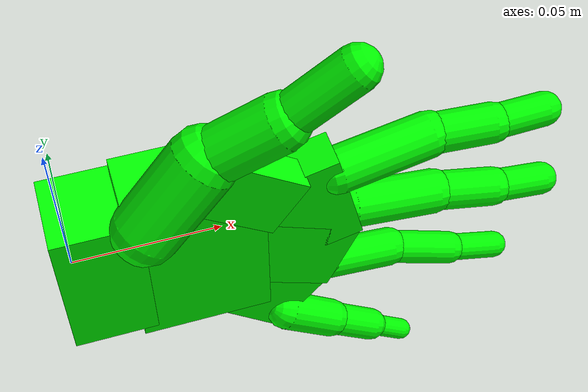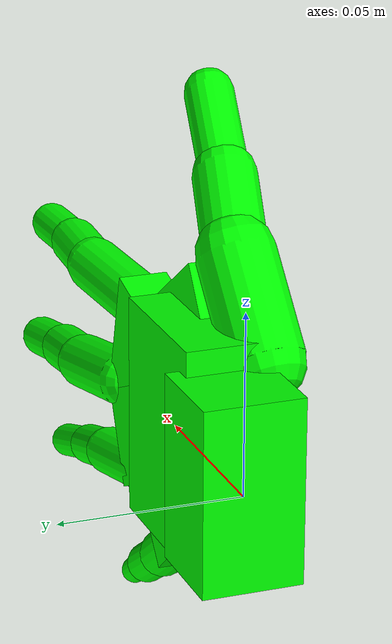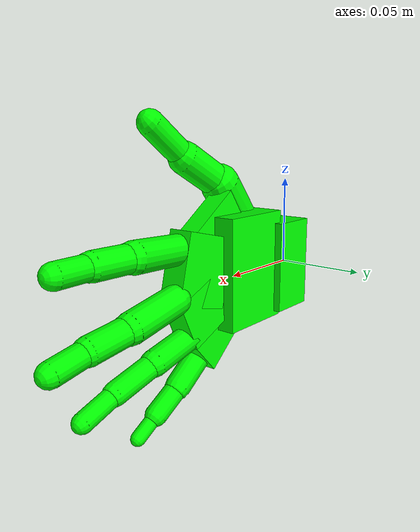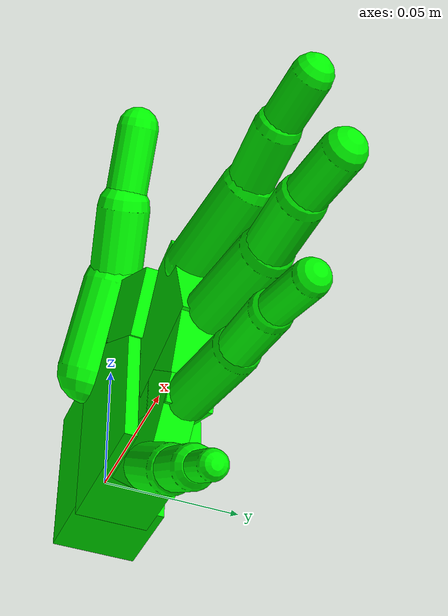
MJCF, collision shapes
<mujoco model="mano">
  <compiler angle="radian" meshdir="meshes/" />

  <default>
    <!-- disable all contacts and use explicit collision pairs -->
    <geom density="800" condim="1" contype="0" conaffinity="0" />
    <!-- with this setting, the response time is around 1s -->
    <position kp="300" dampratio="1.0" inheritrange="1" />
    <joint damping="0.0" armature="1.0" frictionloss="0.0" />
    <site size="0.005" type="sphere" rgba="1 0 0 1" group="3" />
  </default>

  <asset>
    <texture type="skybox" builtin="gradient" rgb1="0.3 0.5 0.7" rgb2="0 0 0" width="512"
      height="3072" />
    <texture type="2d" name="left_groundplane" builtin="checker" mark="edge" rgb1="0.2 0.3 0.4"
      rgb2="0.1 0.2 0.3"
      markrgb="0.8 0.8 0.8" width="300" height="300" />
    <material name="left_groundplane" texture="left_groundplane" texuniform="true"
      texrepeat="5 5"
      reflectance="0.2" />
    <mesh name="left_palm_vis" content_type="model/obj" file="left_meshes/palm_vis.obj" />
    <mesh name="left_palm_collision" content_type="model/obj" file="left_meshes/palm_collision.obj" />
    <mesh name="left_index1_vis" content_type="model/obj" file="left_meshes/index1_vis.obj" />
    <mesh name="left_index1_collision" content_type="model/obj"
      file="left_meshes/index1_collision.obj" />
    <mesh name="left_index2_vis" content_type="model/obj" file="left_meshes/index2_vis.obj" />
    <mesh name="left_index2_collision" content_type="model/obj"
      file="left_meshes/index2_collision.obj" />
    <mesh name="left_index3_vis" content_type="model/obj" file="left_meshes/index3_vis.obj" />
    <mesh name="left_index3_collision" content_type="model/obj"
      file="left_meshes/index3_collision.obj" />
    <mesh name="left_middle1_vis" content_type="model/obj" file="left_meshes/middle1_vis.obj" />
    <mesh name="left_middle1_collision" content_type="model/obj"
      file="left_meshes/middle1_collision.obj" />
    <mesh name="left_middle2_vis" content_type="model/obj" file="left_meshes/middle2_vis.obj" />
    <mesh name="left_middle2_collision" content_type="model/obj"
      file="left_meshes/middle2_collision.obj" />
    <mesh name="left_middle3_vis" content_type="model/obj" file="left_meshes/middle3_vis.obj" />
    <mesh name="left_middle3_collision" content_type="model/obj"
      file="left_meshes/middle3_collision.obj" />
    <mesh name="left_pinky1_vis" content_type="model/obj" file="left_meshes/pinky1_vis.obj" />
    <mesh name="left_pinky1_collision" content_type="model/obj"
      file="left_meshes/pinky1_collision.obj" />
    <mesh name="left_pinky2_vis" content_type="model/obj" file="left_meshes/pinky2_vis.obj" />
    <mesh name="left_pinky2_collision" content_type="model/obj"
      file="left_meshes/pinky2_collision.obj" />
    <mesh name="left_pinky3_vis" content_type="model/obj" file="left_meshes/pinky3_vis.obj" />
    <mesh name="left_pinky3_collision" content_type="model/obj"
      file="left_meshes/pinky3_collision.obj" />
    <mesh name="left_ring1_vis" content_type="model/obj" file="left_meshes/ring1_vis.obj" />
    <mesh name="left_ring1_collision" content_type="model/obj"
      file="left_meshes/ring1_collision.obj" />
    <mesh name="left_ring2_vis" content_type="model/obj" file="left_meshes/ring2_vis.obj" />
    <mesh name="left_ring2_collision" content_type="model/obj"
      file="left_meshes/ring2_collision.obj" />
    <mesh name="left_ring3_vis" content_type="model/obj" file="left_meshes/ring3_vis.obj" />
    <mesh name="left_ring3_collision" content_type="model/obj"
      file="left_meshes/ring3_collision.obj" />
    <mesh name="left_thumb1_vis" content_type="model/obj" file="left_meshes/thumb1_vis.obj" />
    <mesh name="left_thumb1_collision" content_type="model/obj"
      file="left_meshes/thumb1_collision.obj" />
    <mesh name="left_thumb2_vis" content_type="model/obj" file="left_meshes/thumb2_vis.obj" />
    <mesh name="left_thumb2_collision" content_type="model/obj"
      file="left_meshes/thumb2_collision.obj" />
    <mesh name="left_thumb3_vis" content_type="model/obj" file="left_meshes/thumb3_vis.obj" />
    <mesh name="left_thumb3_collision" content_type="model/obj"
      file="left_meshes/thumb3_collision.obj" />
  </asset>

  <worldbody>
    <body name="left_palm" gravcomp="1">
      <joint name="left_pos_x" type="slide" axis="1 0 0" range="-3.0 3.0" />
      <joint name="left_pos_y" type="slide" axis="0 1 0" range="-3.0 3.0" />
      <joint name="left_pos_z" type="slide" axis="0 0 1" range="-3.0 3.0" />
      <joint name="left_rot_x" axis="1 0 0" range="-6.28 6.28" />
      <joint name="left_rot_y" axis="0 1 0" range="-6.28 6.28" />
      <joint name="left_rot_z" axis="0 0 1" range="-6.28 6.28" />

      <geom type="mesh" contype="0" conaffinity="0" group="1" density="0" mesh="left_palm_vis" />
      <geom name="collision_hand_left_index_middle_web" type="box" size="0.017 0.007 0.019" pos="0.075 -0.004 0.008" quat="0.121869 0 0.992546 0" group="3" rgba="0 1 0 1" />
      <geom name="collision_hand_left_palm" type="box" size="0.022 0.012 0.031" pos="0.04 -0.003 0.003" quat="6.12323e-17 0 1 0" group="3" rgba="0 1 0 1" />
      <geom name="collision_hand_left_wrist" type="box" size="0.014 0.014 0.026" pos="0.009 -0.001 0.001" quat="6.12323e-17 0 1 0" group="3" rgba="0 1 0 1" />
      <!-- thumb-index web: mirrored, rotated ~80° about Y -->
      <geom name="collision_hand_left_thumb_index_web" type="box" size="0.011 0.006 0.017" pos="0.056 -0.009 0.028" quat="0.461749 0 0.887011 0" group="3" rgba="0 1 0 1" />
      <!-- ring-pinky web: inner gap, mirrored, rotated ~72.5° about Y -->
      <geom name="collision_hand_left_middle_ring_web" type="box" size="0.014 0.007 0.017" pos="0.074 -0.004 -0.012" quat="0.544639 0 0.838671 0" group="3" rgba="0 1 0 1" />
      <!-- ring-pinky web: outer gap, mirrored, rotated ~-137° about Y -->
      <geom name="collision_hand_left_ring_pinky_web" type="box" size="0.017 0.005 0.017" pos="0.064 -0.006 -0.026" quat="-0.350207 0 0.936672 0" group="3" rgba="0 1 0 1" />
      <site name="left_palm" pos="0.0946604 -0.00147896 -0.00335754" quat="1 -1 1 -1" />

      <body name="left_index1y" pos="0.0880972 -0.00520036 0.020686"
        quat="0.992949 0.00330198 -0.115013 -0.0285073">
        <camera name="left_track" pos="0.868 -0.348 -0.175"
          xyaxes="0.037 0.999 -0.000 0.011 -0.000 1.000" />
        <inertial pos="0 0 0" mass="0.02" diaginertia="1.6875e-06 1.6875e-06 1.6875e-06" />
        <joint name="left_j_index1y" pos="0 0 0" axis="0 -1 0" range="-0.174533 0.174533" />
        <body name="left_index1z">
          <inertial pos="0 0 0" mass="0.02" diaginertia="1.6875e-06 1.6875e-06 1.6875e-06" />
          <joint name="left_j_index1z" pos="0 0 0" axis="0 0 -1" range="0 1.5708" />
          <geom quat="0.992949 -0.00330198 0.115013 0.0285073" type="mesh" contype="0"
            conaffinity="0"
            group="1" density="0" mesh="left_index1_vis" />
          <geom name="collision_hand_left_index_1" type="capsule" size="0.008" fromto="-6.93889e-18 -1.30104e-18 -4.77049e-18 0.0320372 0.00585704 -0.00531176" group="3" rgba="0 1 0 1" />
          <body name="left_index2" pos="0.0320372 0.00585704 -0.00531176"
            quat="0.992687 0.00261912 0.0813131 0.0891864">
            <inertial pos="0 0 0" mass="0.02" diaginertia="1.6875e-06 1.6875e-06 1.6875e-06" />
            <joint name="left_j_index2" pos="0 0 0" axis="0 0 -1" range="0 1.74533" />
            <geom quat="0.997574 0.00206105 0.0338008 -0.0608285" type="mesh" contype="0"
              conaffinity="0" group="1" density="0" mesh="left_index2_vis" />
            <geom name="collision_hand_left_index_2" type="capsule" size="0.007" fromto="-1.73472e-18 0 4.33681e-19 0.0217759 -0.00397366 -0.00161355" group="3" rgba="0 1 0 1" />
            <body name="left_index3" pos="0.0217759 -0.00397366 -0.00161355"
              quat="0.995276 0.00115242 0.0364189 -0.0899872">
              <inertial pos="0 0 0" mass="0.02" diaginertia="1.6875e-06 1.6875e-06 1.6875e-06" />
              <joint name="left_j_index3" pos="0 0 0" axis="0 0 -1" range="0 1.39626" />
              <geom quat="0.999568 7.53592e-05 -0.00257406 0.0292638" type="mesh" contype="0"
                conaffinity="0" group="1" density="0" mesh="left_index3_vis" />
              <geom name="collision_hand_left_index_3" type="capsule" size="0.006" fromto="-3.46945e-18 -4.33681e-19 5.3027e-18 0.019 0.002 -5.3027e-18" group="3" rgba="0 1 0 1" />
              <site name="trace_hand_left_index_tip" pos="0.023106 -0.003671 0" size="0.005"
                rgba="1 0 0 1" />
              <site name="track_hand_left_index_tip" pos="0.023106 -0.003671 0" size="0.005"
                rgba="0 0 1 1" />
              <site name="left_index_tip" pos="0.023106 -0.003671 0" quat="1 0 0 0" />
            </body>
          </body>
        </body>
      </body>

      <body name="left_middle1y" pos="0.0946604 -0.00147896 -0.00335754"
        quat="0.999812 -0.000138377 0.0177257 -0.0078051">
        <inertial pos="0 0 0" mass="0.02" diaginertia="1.6875e-06 1.6875e-06 1.6875e-06" />
        <joint name="left_j_middle1y" pos="0 0 0" axis="0 -1 0" range="-0.174533 0.174533" />
        <body name="left_middle1z">
          <inertial pos="0 0 0" mass="0.02" diaginertia="1.6875e-06 1.6875e-06 1.6875e-06" />
          <joint name="left_j_middle1z" pos="0 0 0" axis="0 0 -1" range="0 1.5708" />
          <geom quat="0.999812 0.000138377 -0.0177257 0.0078051" type="mesh" contype="0"
            conaffinity="0" group="1" density="0" mesh="left_middle1_vis" />
          <geom name="collision_hand_left_middle_1" type="capsule" size="0.008" fromto="-1.04083e-17 -1.30104e-18 2.60209e-18 0.0313285 0.00235072 -0.00448566" group="3" rgba="0 1 0 1" />
          <body name="left_middle2" pos="0.0313285 0.00235072 -0.00448566"
            quat="0.99679 0.00152841 0.0709577 0.037047">
            <inertial pos="0 0 0" mass="0.02" diaginertia="1.6875e-06 1.6875e-06 1.6875e-06" />
            <joint name="left_j_middle2" pos="0 0 0" axis="0 0 -1" range="0 1.74533" />
            <geom quat="0.995635 -0.00260071 -0.0886064 -0.0292231" type="mesh" contype="0"
              conaffinity="0" group="1" density="0" mesh="left_middle2_vis" />
            <geom name="collision_hand_left_middle_2" type="capsule" size="0.007" fromto="1.73472e-18 -2.1684e-19 -3.40168e-18 0.0231278 -0.00261309 0.00016224" group="3" rgba="0 1 0 1" />
            <body name="left_middle3" pos="0.0231278 -0.00261309 0.00016224"
              quat="0.998412 -8.48904e-06 -0.00349023 -0.0562232">
              <inertial pos="0 0 0" mass="0.02" diaginertia="1.6875e-06 1.6875e-06 1.6875e-06" />
              <joint name="left_j_middle3" pos="0 0 0" axis="0 0 -1" range="0 1.39626" />
              <geom quat="0.996006 0.00229162 -0.0851367 0.0268094" type="mesh" contype="0"
                conaffinity="0" group="1" density="0" mesh="left_middle3_vis" />
              <geom name="collision_hand_left_middle_3" type="capsule" size="0.006" fromto="-1.73472e-18 -6.50521e-19 1.11576e-18 0.02 0.002 -1.11576e-18" group="3" rgba="0 1 0 1" />
              <site name="trace_hand_left_middle_tip" pos="0.022723 -0.003808 0" size="0.005"
                rgba="1 0 0 1" />
              <site name="track_hand_left_middle_tip" pos="0.022723 -0.003808 0" size="0.005"
                rgba="0 0 1 1" />
              <site name="left_middle_tip" pos="0.022723 -0.003808 0" quat="1 0 0 0" />
            </body>
          </body>
        </body>
      </body>

      <body name="left_pinky1y" pos="0.0687869 -0.00994033 -0.0432093"
        quat="0.959155 -0.0168401 0.276261 -0.0584674">
        <inertial pos="0 0 0" mass="0.02" diaginertia="1.6875e-06 1.6875e-06 1.6875e-06" />
        <joint name="left_j_pinky1y" pos="0 0 0" axis="0 -1 0" range="-0.174533 0.174533" />
        <body name="left_pinky1z">
          <inertial pos="0 0 0" mass="0.02" diaginertia="1.6875e-06 1.6875e-06 1.6875e-06" />
          <joint name="left_j_pinky1z" pos="0 0 0" axis="0 0 -1" range="0 1.5708" />
          <geom quat="0.959155 0.0168401 -0.276261 0.0584674" type="mesh" contype="0"
            conaffinity="0"
            group="1" density="0" mesh="left_pinky1_vis" />
          <geom name="collision_hand_left_pinky_1" type="capsule" size="0.007" fromto="3.46945e-18 0 -9.75782e-19 0.0208927 0.0026189 -0.00153353" group="3" rgba="0 1 0 1" />
          <body name="left_pinky2" pos="0.0208927 0.0026189 -0.00153353"
            quat="0.997398 -0.00215815 0.036279 0.0622646">
            <inertial pos="0 0 0" mass="0.02" diaginertia="1.6875e-06 1.6875e-06 1.6875e-06" />
            <joint name="left_j_pinky2" pos="0 0 0" axis="0 0 -1" range="0 1.74533" />
            <geom quat="0.950241 -0.000456125 -0.311514 -0.00139136" type="mesh" contype="0"
              conaffinity="0" group="1" density="0" mesh="left_pinky2_vis" />
            <geom name="collision_hand_left_pinky_2" type="capsule" size="0.006" fromto="-0 -1.0842e-19 -1.19262e-18 0.0189021 -0.00074651 0.00106698" group="3" rgba="0 1 0 1" />
            <body name="left_pinky3" pos="0.0189021 -0.00074651 0.00106698"
              quat="0.999409 0.00047293 -0.028183 -0.0196984">
              <inertial pos="0 0 0" mass="0.02" diaginertia="1.6875e-06 1.6875e-06 1.6875e-06" />
              <joint name="left_j_pinky3" pos="0 0 0" axis="0 0 -1" range="0 1.39626" />
              <geom quat="0.958485 0.00519187 -0.284559 0.0174879" type="mesh" contype="0"
                conaffinity="0" group="1" density="0" mesh="left_pinky3_vis" />
              <geom name="collision_hand_left_pinky_3" type="capsule" size="0.004" fromto="-0 0 1.66533e-18 0.015 0 -1.66533e-18" group="3" rgba="0 1 0 1" />
              <site name="trace_hand_left_pinky_tip" pos="0.016054 -0.004705 0" size="0.005"
                rgba="1 0 0 1" />
              <site name="track_hand_left_pinky_tip" pos="0.016054 -0.004705 0" size="0.005"
                rgba="0 0 1 1" />
              <site name="left_pinky_tip" pos="0.016054 -0.004705 0" quat="1 0 0 0" />
            </body>
          </body>
        </body>
      </body>

      <body name="left_ring1y" pos="0.0817355 -0.00395742 -0.0266732"
        quat="0.987327 -0.0036119 0.157025 -0.0227106">
        <inertial pos="0 0 0" mass="0.02" diaginertia="1.6875e-06 1.6875e-06 1.6875e-06" />
        <joint name="left_j_ring1y" pos="0 0 0" axis="0 -1 0" range="-0.174533 0.174533" />
        <body name="left_ring1z">
          <inertial pos="0 0 0" mass="0.02" diaginertia="1.6875e-06 1.6875e-06 1.6875e-06" />
          <joint name="left_j_ring1z" pos="0 0 0" axis="0 0 -1" range="0 1.5708" />
          <geom quat="0.987327 0.0036119 -0.157025 0.0227106" type="mesh" contype="0"
            conaffinity="0"
            group="1" density="0" mesh="left_ring1_vis" />
          <geom name="collision_hand_left_ring_1" type="capsule" size="0.007" fromto="-6.93889e-18 -1.0842e-18 -2.60209e-18 0.0283738 0.0033752 0.00393707" group="3" rgba="0 1 0 1" />
          <body name="left_ring2" pos="0.0283738 0.0033752 0.00393707"
            quat="0.995918 -0.000882244 -0.0685799 0.0586873">
            <inertial pos="0 0 0" mass="0.02" diaginertia="1.6875e-06 1.6875e-06 1.6875e-06" />
            <joint name="left_j_ring2" pos="0 0 0" axis="0 0 -1" range="0 1.74533" />
            <geom quat="0.995395 -0.00318966 -0.0889052 -0.0357119" type="mesh" contype="0"
              conaffinity="0" group="1" density="0" mesh="left_ring2_vis" />
            <geom name="collision_hand_left_ring_2" type="capsule" size="0.006" fromto="-1.73472e-18 -8.67362e-19 -2.1684e-19 0.0243171 -0.00343957 -0.0033447" group="3" rgba="0 1 0 1" />
            <body name="left_ring3" pos="0.0243171 -0.00343957 -0.0033447"
              quat="0.995261 0.000120758 0.0677846 -0.0697243">
              <inertial pos="0 0 0" mass="0.02" diaginertia="1.6875e-06 1.6875e-06 1.6875e-06" />
              <joint name="left_j_ring3" pos="0 0 0" axis="0 0 -1" range="0 1.39626" />
              <geom quat="0.98714 0.00532482 -0.156183 0.033655" type="mesh" contype="0"
                conaffinity="0" group="1" density="0" mesh="left_ring3_vis" />
              <geom name="collision_hand_left_ring_3" type="capsule" size="0.005" fromto="-1.73472e-18 -6.50521e-19 1.11576e-18 0.02 0.002 -1.11576e-18" group="3" rgba="0 1 0 1" />
              <site name="trace_hand_left_ring_tip" pos="0.021453 -0.00486 0" size="0.005"
                rgba="1 0 0 1" />
              <site name="track_hand_left_ring_tip" pos="0.021453 -0.00486 0" size="0.005"
                rgba="0 0 1 1" />
              <site name="left_ring_tip" pos="0.021453 -0.00486 0" quat="1 0 0 0" />
            </body>
          </body>
        </body>
      </body>

      <body name="left_thumb1x" pos="0.0240897 -0.0155223 0.0258128"
        quat="0.751793 0.497092 -0.432853 0.0185415">
        <inertial pos="0 0 0" mass="0.02" diaginertia="1.6875e-06 1.6875e-06 1.6875e-06" />
        <joint name="left_j_thumb1x" pos="0 0 0" axis="1 0 0" range="0 1.0472" />
        <body name="left_thumb1y">
          <inertial pos="0 0 0" mass="0.02" diaginertia="1.6875e-06 1.6875e-06 1.6875e-06" />
          <joint name="left_j_thumb1y" pos="0 0 0" axis="0 -1 0" range="-0.261799 1.0472" />
          <body name="left_thumb1z">
            <inertial pos="0 0 0" mass="0.02" diaginertia="1.6875e-06 1.6875e-06 1.6875e-06" />
            <joint name="left_j_thumb1z" pos="0 0 0" axis="0 0 -1" range="-1.0472 1.0472" />
            <geom quat="0.751793 -0.497092 0.432853 -0.0185414" type="mesh" contype="0"
              conaffinity="0" group="1" density="0" mesh="left_thumb1_vis" />
            <geom name="collision_hand_left_thumb_1" type="capsule" size="0.011" fromto="-0 3.46945e-18 1.73472e-18 0.0277653 0.0087871 -0.00999011" group="3" rgba="0 1 0 1" />
            <body name="left_thumb2y" pos="0.0277653 0.0087871 -0.00999011"
              quat="0.975097 -0.00949146 0.164941 0.147951">
              <inertial pos="0 0 0" mass="0.02" diaginertia="1.6875e-06 1.6875e-06 1.6875e-06" />
              <joint name="left_j_thumb2y" pos="0 0 0" axis="0 -1 0" range="-0.174533 0.174533" />
              <body name="left_thumb2z">
                <inertial pos="0 0 0" mass="0.02" diaginertia="1.6875e-06 1.6875e-06 1.6875e-06" />
                <joint name="left_j_thumb2z" pos="0 0 0" axis="0 0 -1" range="0 1.5708" />
                <geom quat="0.806442 -0.410478 0.371794 -0.207191" type="mesh" contype="0"
                  conaffinity="0" group="1" density="0" mesh="left_thumb2_vis" />
                <geom name="collision_hand_left_thumb_2" type="capsule" size="0.009" fromto="-3.46945e-18 0 3.52366e-18 0.0251906 -0.00996365 0.00050434" group="3" rgba="0 1 0 1" />
                <body name="left_thumb3" pos="0.0251906 -0.00996365 0.00050434"
                  quat="0.982278 0.000921531 -0.00965077 -0.187179">
                  <inertial pos="0 0 0" mass="0.02" diaginertia="1.6875e-06 1.6875e-06 1.6875e-06" />
                  <joint name="left_j_thumb3" pos="0 0 0" axis="0 0 -1" range="0 1.39626" />
                  <geom quat="0.826966 -0.475539 0.295964 -0.0489517" type="mesh" contype="0"
                    conaffinity="0" group="1" density="0" mesh="left_thumb3_vis" />
                  <geom name="collision_hand_left_thumb_3" type="capsule" size="0.007" fromto="1.73472e-18 0 3.01077e-18 0.026822 0.004 -3.01077e-18" group="3" rgba="0 1 0 1" />
                  <site name="trace_hand_left_thumb_tip" pos="0.026822 -0.00565 0" size="0.005"
                    rgba="1 0 0 1" />
                  <site name="track_hand_left_thumb_tip" pos="0.026822 -0.00565 0" size="0.005"
                    rgba="0 0 1 1" />
                  <site name="left_thumb_tip" pos="0.026822 -0.00565 0" quat="1 0 0 0" />
                </body>
              </body>
            </body>
          </body>
        </body>
      </body>
    </body>
  </worldbody>

  <actuator>
    <!-- Base joints -->
    <position name="left_pos_x" joint="left_pos_x" kp="1000" />
    <position name="left_pos_y" joint="left_pos_y" kp="1000" />
    <position name="left_pos_z" joint="left_pos_z" kp="1000" />
    <position name="left_rot_x" joint="left_rot_x" kp="1000" />
    <position name="left_rot_y" joint="left_rot_y" kp="1000" />
    <position name="left_rot_z" joint="left_rot_z" kp="1000" />

    <!-- Index finger joints -->
    <position name="left_j_index1y_position" joint="left_j_index1y" />
    <position name="left_j_index1z_position" joint="left_j_index1z" />
    <position name="left_j_index2_position" joint="left_j_index2" />
    <position name="left_j_index3_position" joint="left_j_index3" />

    <!-- Middle finger joints -->
    <position name="left_j_middle1y_position" joint="left_j_middle1y" />
    <position name="left_j_middle1z_position" joint="left_j_middle1z" />
    <position name="left_j_middle2_position" joint="left_j_middle2" />
    <position name="left_j_middle3_position" joint="left_j_middle3" />

    <!-- Pinky finger joints -->
    <position name="left_j_pinky1y_position" joint="left_j_pinky1y" />
    <position name="left_j_pinky1z_position" joint="left_j_pinky1z" />
    <position name="left_j_pinky2_position" joint="left_j_pinky2" />
    <position name="left_j_pinky3_position" joint="left_j_pinky3" />

    <!-- Ring finger joints -->
    <position name="left_j_ring1y_position" joint="left_j_ring1y" />
    <position name="left_j_ring1z_position" joint="left_j_ring1z" />
    <position name="left_j_ring2_position" joint="left_j_ring2" />
    <position name="left_j_ring3_position" joint="left_j_ring3" />

    <!-- Thumb joints -->
    <position name="left_j_thumb1x_position" joint="left_j_thumb1x" />
    <position name="left_j_thumb1y_position" joint="left_j_thumb1y" />
    <position name="left_j_thumb1z_position" joint="left_j_thumb1z" />
    <position name="left_j_thumb2y_position" joint="left_j_thumb2y" />
    <position name="left_j_thumb2z_position" joint="left_j_thumb2z" />
    <position name="left_j_thumb3_position" joint="left_j_thumb3" />
  </actuator>
</mujoco>
